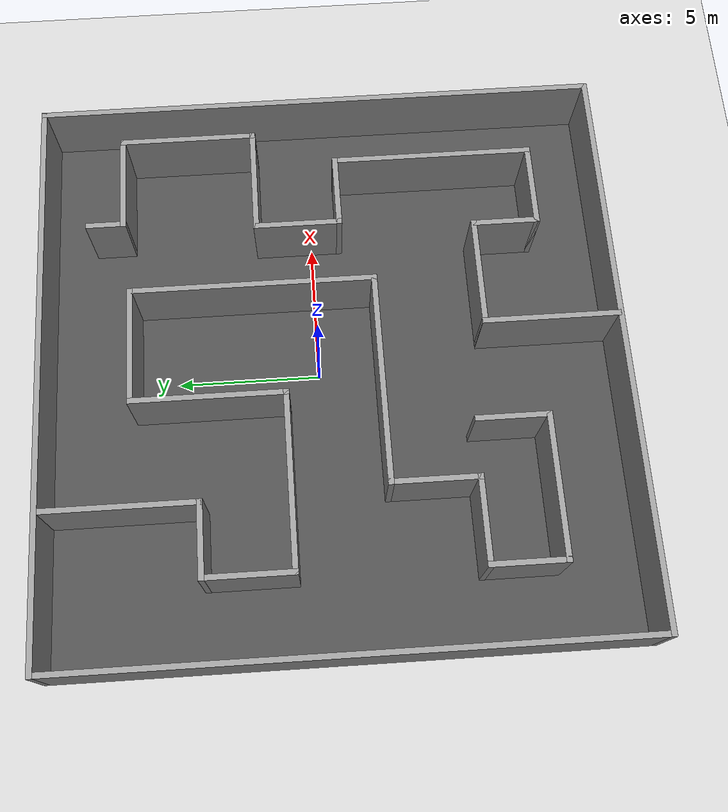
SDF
<sdf version="1.4">
 <world name="default">
  <light name="sun" type="directional">
   <pose>0 0 10 0 -0 0</pose>
   <diffuse>0.8 0.8 0.8 1</diffuse>
   <specular>0.2 0.2 0.2 1</specular>
   <attenuation>
    <range>1000</range>
    <constant>0.9</constant>
    <linear>0.01</linear>
    <quadratic>0.001</quadratic>
   </attenuation>
   <direction>-0.5 0.1 -0.9</direction>
  </light>
  <model name="ground_plane">
   <static>1</static>
   <link name="link">
    <collision name="collision">
     <geometry><plane><normal>0 0 1</normal><size>100 100</size></plane></geometry>
     <surface><friction><ode><mu>100</mu><mu2>50</mu2></ode></friction></surface>
    </collision>
    <visual name="visual">
     <cast_shadows>0</cast_shadows>
     <geometry><plane><normal>0 0 1</normal><size>100 100</size></plane></geometry>
     <material>
      <script><uri>file://media/materials/scripts/gazebo.material</uri><name>Gazebo/Grey</name></script>
     </material>
    </visual>
    <velocity_decay><linear>0</linear><angular>0</angular></velocity_decay>
   </link>
  </model>
  <physics type="ode">
   <max_step_size>0.001</max_step_size>
   <real_time_factor>1</real_time_factor>
   <real_time_update_rate>1000</real_time_update_rate>
   <gravity>0 0 -9.8</gravity>
  </physics>
  <scene><ambient>0.4 0.4 0.4 1</ambient><background>0.7 0.7 0.7 1</background><shadows>1</shadows></scene>
  <spherical_coordinates>
   <surface_model>EARTH_WGS84</surface_model>
   <latitude_deg>0</latitude_deg>
   <longitude_deg>0</longitude_deg>
   <elevation>0</elevation>
   <heading_deg>0</heading_deg>
  </spherical_coordinates>
  <model name="asphalt_plane">
   <static>1</static>
   <link name="link">
    <collision name="collision"><geometry><box><size>20 20 0.1</size></box></geometry></collision>
    <visual name="visual">
     <cast_shadows>0</cast_shadows>
     <geometry><box><size>20 20 0.1</size></box></geometry>
     <material>
      <script>
       <uri>model://asphalt_plane/materials/scripts</uri>
       <uri>model://asphalt_plane/materials/textures</uri>
       <name>vrc/asphalt</name>
      </script>
     </material>
    </visual>
    <velocity_decay><linear>0</linear><angular>0</angular></velocity_decay>
   </link>
   <pose>0 -0.413791 0 0 -0 0</pose>
  </model>
  <model name="house2d_1">
   <link name="Wall_10">
    <collision name="Wall_10_Collision">
     <geometry><box><size>6.24578 0.2 2.5</size></box></geometry>
     <pose>0 0 1.25 0 -0 0</pose>
    </collision>
    <visual name="Wall_10_Visual">
     <pose>0 0 1.25 0 -0 0</pose>
     <geometry><box><size>6.24578 0.2 2.5</size></box></geometry>
     <material>
      <script><uri>file://media/materials/scripts/gazebo.material</uri><name>Gazebo/Grey</name></script>
     </material>
    </visual>
    <velocity_decay><linear>0</linear><angular>0</angular></velocity_decay>
    <pose>-4.31155 1.65277 0 0 -0 0</pose>
   </link>
   <link name="Wall_11">
    <collision name="Wall_11_Collision">
     <geometry><box><size>5.44325 0.2 2.5</size></box></geometry>
     <pose>0 0 1.25 0 -0 0</pose>
    </collision>
    <visual name="Wall_11_Visual">
     <pose>0 0 1.25 0 -0 0</pose>
     <geometry><box><size>5.44325 0.2 2.5</size></box></geometry>
     <material>
      <script><uri>file://media/materials/scripts/gazebo.material</uri><name>Gazebo/Grey</name></script>
     </material>
    </visual>
    <velocity_decay><linear>0</linear><angular>0</angular></velocity_decay>
    <pose>-1.28866 4.27439 0 0 -0 1.5708</pose>
   </link>
   <link name="Wall_12">
    <collision name="Wall_12_Collision">
     <geometry><box><size>4.21269 0.2 2.5</size></box></geometry>
     <pose>0 0 1.25 0 -0 0</pose>
    </collision>
    <visual name="Wall_12_Visual">
     <pose>0 0 1.25 0 -0 0</pose>
     <geometry><box><size>4.21269 0.2 2.5</size></box></geometry>
     <material>
      <script><uri>file://media/materials/scripts/gazebo.material</uri><name>Gazebo/Grey</name></script>
     </material>
    </visual>
    <velocity_decay><linear>0</linear><angular>0</angular></velocity_decay>
    <pose>0.717687 6.89602 0 0 -0 0</pose>
   </link>
   <link name="Wall_13">
    <collision name="Wall_13_Collision">
     <geometry><box><size>8.7069 0.2 2.5</size></box></geometry>
     <pose>0 0 1.25 0 -0 0</pose>
    </collision>
    <visual name="Wall_13_Visual">
     <pose>0 0 1.25 0 -0 0</pose>
     <geometry><box><size>8.7069 0.2 2.5</size></box></geometry>
     <material>
      <script><uri>file://media/materials/scripts/gazebo.material</uri><name>Gazebo/Grey</name></script>
     </material>
    </visual>
    <velocity_decay><linear>0</linear><angular>0</angular></velocity_decay>
    <pose>2.72403 2.64257 0 0 0 -1.5708</pose>
   </link>
   <link name="Wall_14">
    <collision name="Wall_14_Collision">
     <geometry><box><size>7.52984 0.2 2.5</size></box></geometry>
     <pose>0 0 1.25 0 -0 0</pose>
    </collision>
    <visual name="Wall_14_Visual">
     <pose>0 0 1.25 0 -0 0</pose>
     <geometry><box><size>7.52984 0.2 2.5</size></box></geometry>
     <material>
      <script><uri>file://media/materials/scripts/gazebo.material</uri><name>Gazebo/Grey</name></script>
     </material>
    </visual>
    <velocity_decay><linear>0</linear><angular>0</angular></velocity_decay>
    <pose>-0.940891 -1.61088 0 0 -0 3.14159</pose>
   </link>
   <link name="Wall_15">
    <collision name="Wall_15_Collision">
     <geometry><box><size>3.14264 0.2 2.5</size></box></geometry>
     <pose>0 0 1.25 0 -0 0</pose>
    </collision>
    <visual name="Wall_15_Visual">
     <pose>0 0 1.25 0 -0 0</pose>
     <geometry><box><size>3.14264 0.2 2.5</size></box></geometry>
     <material>
      <script><uri>file://media/materials/scripts/gazebo.material</uri><name>Gazebo/Grey</name></script>
     </material>
    </visual>
    <velocity_decay><linear>0</linear><angular>0</angular></velocity_decay>
    <pose>-4.60581 -3.0822 0 0 0 -1.5708</pose>
   </link>
   <link name="Wall_16">
    <collision name="Wall_16_Collision">
     <geometry><box><size>3.08914 0.2 2.5</size></box></geometry>
     <pose>0 0 1.25 0 -0 0</pose>
    </collision>
    <visual name="Wall_16_Visual">
     <pose>0 0 1.25 0 -0 0</pose>
     <geometry><box><size>3.08914 0.2 2.5</size></box></geometry>
     <material>
      <script><uri>file://media/materials/scripts/gazebo.material</uri><name>Gazebo/Grey</name></script>
     </material>
    </visual>
    <velocity_decay><linear>0</linear><angular>0</angular></velocity_decay>
    <pose>-6.05038 -4.55352 0 0 -0 3.14159</pose>
   </link>
   <link name="Wall_17">
    <collision name="Wall_17_Collision">
     <geometry><box><size>2.71462 0.2 2.5</size></box></geometry>
     <pose>0 0 1.25 0 -0 0</pose>
    </collision>
    <visual name="Wall_17_Visual">
     <pose>0 0 1.25 0 -0 0</pose>
     <geometry><box><size>2.71462 0.2 2.5</size></box></geometry>
     <material>
      <script><uri>file://media/materials/scripts/gazebo.material</uri><name>Gazebo/Grey</name></script>
     </material>
    </visual>
    <velocity_decay><linear>0</linear><angular>0</angular></velocity_decay>
    <pose>-7.49495 -5.81083 0 0 0 -1.5708</pose>
   </link>
   <link name="Wall_18">
    <collision name="Wall_18_Collision">
     <geometry><box><size>5.06873 0.2 2.5</size></box></geometry>
     <pose>0 0 1.25 0 -0 0</pose>
    </collision>
    <visual name="Wall_18_Visual">
     <pose>0 0 1.25 0 -0 0</pose>
     <geometry><box><size>5.06873 0.2 2.5</size></box></geometry>
     <material>
      <script><uri>file://media/materials/scripts/gazebo.material</uri><name>Gazebo/Grey</name></script>
     </material>
    </visual>
    <velocity_decay><linear>0</linear><angular>0</angular></velocity_decay>
    <pose>-5.06058 -7.06814 0 0 -0 0</pose>
   </link>
   <link name="Wall_19">
    <collision name="Wall_19_Collision">
     <geometry><box><size>2.60761 0.2 2.5</size></box></geometry>
     <pose>0 0 1.25 0 -0 0</pose>
    </collision>
    <visual name="Wall_19_Visual">
     <pose>0 0 1.25 0 -0 0</pose>
     <geometry><box><size>2.60761 0.2 2.5</size></box></geometry>
     <material>
      <script><uri>file://media/materials/scripts/gazebo.material</uri><name>Gazebo/Grey</name></script>
     </material>
    </visual>
    <velocity_decay><linear>0</linear><angular>0</angular></velocity_decay>
    <pose>-2.62622 -5.86433 0 0 -0 1.5708</pose>
   </link>
   <link name="Wall_2">
    <collision name="Wall_2_Collision">
     <geometry><box><size>20.2 0.2 2.5</size></box></geometry>
     <pose>0 0 1.25 0 -0 0</pose>
    </collision>
    <visual name="Wall_2_Visual">
     <pose>0 0 1.25 0 -0 0</pose>
     <geometry><box><size>20.2 0.2 2.5</size></box></geometry>
     <material>
      <script><uri>file://media/materials/scripts/gazebo.material</uri><name>Gazebo/Grey</name></script>
     </material>
    </visual>
    <velocity_decay><linear>0</linear><angular>0</angular></velocity_decay>
    <pose>-0 -10 0 0 -0 0</pose>
   </link>
   <link name="Wall_21">
    <collision name="Wall_21_Collision">
     <geometry><box><size>4.80122 0.2 2.5</size></box></geometry>
     <pose>0 0 1.25 0 -0 0</pose>
    </collision>
    <visual name="Wall_21_Visual">
     <pose>0 0 1.25 0 -0 0</pose>
     <geometry><box><size>4.80122 0.2 2.5</size></box></geometry>
     <material>
      <script><uri>file://media/materials/scripts/gazebo.material</uri><name>Gazebo/Grey</name></script>
     </material>
    </visual>
    <velocity_decay><linear>0</linear><angular>0</angular></velocity_decay>
    <pose>0.851443 -7.60316 0 0 -0 1.5708</pose>
   </link>
   <link name="Wall_22">
    <collision name="Wall_22_Collision">
     <geometry><box><size>3.94517 0.2 2.5</size></box></geometry>
     <pose>0 0 1.25 0 -0 0</pose>
    </collision>
    <visual name="Wall_22_Visual">
     <pose>0 0 1.25 0 -0 0</pose>
     <geometry><box><size>3.94517 0.2 2.5</size></box></geometry>
     <material>
      <script><uri>file://media/materials/scripts/gazebo.material</uri><name>Gazebo/Grey</name></script>
     </material>
    </visual>
    <velocity_decay><linear>0</linear><angular>0</angular></velocity_decay>
    <pose>2.72403 -5.30255 0 0 -0 0</pose>
   </link>
   <link name="Wall_23">
    <collision name="Wall_23_Collision">
     <geometry><box><size>2.44711 0.2 2.5</size></box></geometry>
     <pose>0 0 1.25 0 -0 0</pose>
    </collision>
    <visual name="Wall_23_Visual">
     <pose>0 0 1.25 0 -0 0</pose>
     <geometry><box><size>2.44711 0.2 2.5</size></box></geometry>
     <material>
      <script><uri>file://media/materials/scripts/gazebo.material</uri><name>Gazebo/Grey</name></script>
     </material>
    </visual>
    <velocity_decay><linear>0</linear><angular>0</angular></velocity_decay>
    <pose>4.59662 -6.42611 0 0 0 -1.5708</pose>
   </link>
   <link name="Wall_24">
    <collision name="Wall_24_Collision">
     <geometry><box><size>3.03563 0.2 2.5</size></box></geometry>
     <pose>0 0 1.25 0 -0 0</pose>
    </collision>
    <visual name="Wall_24_Visual">
     <pose>0 0 1.25 0 -0 0</pose>
     <geometry><box><size>3.03563 0.2 2.5</size></box></geometry>
     <material>
      <script><uri>file://media/materials/scripts/gazebo.material</uri><name>Gazebo/Grey</name></script>
     </material>
    </visual>
    <velocity_decay><linear>0</linear><angular>0</angular></velocity_decay>
    <pose>6.01443 -7.54966 0 0 -0 0</pose>
   </link>
   <link name="Wall_25">
    <collision name="Wall_25_Collision">
     <geometry><box><size>7.20883 0.2 2.5</size></box></geometry>
     <pose>0 0 1.25 0 -0 0</pose>
    </collision>
    <visual name="Wall_25_Visual">
     <pose>0 0 1.25 0 -0 0</pose>
     <geometry><box><size>7.20883 0.2 2.5</size></box></geometry>
     <material>
      <script><uri>file://media/materials/scripts/gazebo.material</uri><name>Gazebo/Grey</name></script>
     </material>
    </visual>
    <velocity_decay><linear>0</linear><angular>0</angular></velocity_decay>
    <pose>7.43225 -4.04525 0 0 -0 1.5708</pose>
   </link>
   <link name="Wall_26">
    <collision name="Wall_26_Collision">
     <geometry><box><size>2.66112 0.2 2.5</size></box></geometry>
     <pose>0 0 1.25 0 -0 0</pose>
    </collision>
    <visual name="Wall_26_Visual">
     <pose>0 0 1.25 0 -0 0</pose>
     <geometry><box><size>2.66112 0.2 2.5</size></box></geometry>
     <material>
      <script><uri>file://media/materials/scripts/gazebo.material</uri><name>Gazebo/Grey</name></script>
     </material>
    </visual>
    <velocity_decay><linear>0</linear><angular>0</angular></velocity_decay>
    <pose>6.20169 -0.540832 0 0 -0 3.14159</pose>
   </link>
   <link name="Wall_27">
    <collision name="Wall_27_Collision">
     <geometry><box><size>3.14264 0.2 2.5</size></box></geometry>
     <pose>0 0 1.25 0 -0 0</pose>
    </collision>
    <visual name="Wall_27_Visual">
     <pose>0 0 1.25 0 -0 0</pose>
     <geometry><box><size>3.14264 0.2 2.5</size></box></geometry>
     <material>
      <script><uri>file://media/materials/scripts/gazebo.material</uri><name>Gazebo/Grey</name></script>
     </material>
    </visual>
    <velocity_decay><linear>0</linear><angular>0</angular></velocity_decay>
    <pose>4.97114 0.930487 0 0 -0 1.5708</pose>
   </link>
   <link name="Wall_28">
    <collision name="Wall_28_Collision">
     <geometry><box><size>3.89167 0.2 2.5</size></box></geometry>
     <pose>0 0 1.25 0 -0 0</pose>
    </collision>
    <visual name="Wall_28_Visual">
     <pose>0 0 1.25 0 -0 0</pose>
     <geometry><box><size>3.89167 0.2 2.5</size></box></geometry>
     <material>
      <script><uri>file://media/materials/scripts/gazebo.material</uri><name>Gazebo/Grey</name></script>
     </material>
    </visual>
    <velocity_decay><linear>0</linear><angular>0</angular></velocity_decay>
    <pose>6.81697 2.40181 0 0 -0 0</pose>
   </link>
   <link name="Wall_29">
    <collision name="Wall_29_Collision">
     <geometry><box><size>4.90822 0.2 2.5</size></box></geometry>
     <pose>0 0 1.25 0 -0 0</pose>
    </collision>
    <visual name="Wall_29_Visual">
     <pose>0 0 1.25 0 -0 0</pose>
     <geometry><box><size>4.90822 0.2 2.5</size></box></geometry>
     <material>
      <script><uri>file://media/materials/scripts/gazebo.material</uri><name>Gazebo/Grey</name></script>
     </material>
    </visual>
    <velocity_decay><linear>0</linear><angular>0</angular></velocity_decay>
    <pose>8.66281 4.75592 0 0 -0 1.5708</pose>
   </link>
   <link name="Wall_3">
    <collision name="Wall_3_Collision">
     <geometry><box><size>20.2 0.2 2.5</size></box></geometry>
     <pose>0 0 1.25 0 -0 0</pose>
    </collision>
    <visual name="Wall_3_Visual">
     <pose>0 0 1.25 0 -0 0</pose>
     <geometry><box><size>20.2 0.2 2.5</size></box></geometry>
     <material>
      <script><uri>file://media/materials/scripts/gazebo.material</uri><name>Gazebo/Grey</name></script>
     </material>
    </visual>
    <velocity_decay><linear>0</linear><angular>0</angular></velocity_decay>
    <pose>10 0 0 0 -0 1.5708</pose>
   </link>
   <link name="Wall_30">
    <collision name="Wall_30_Collision">
     <geometry><box><size>3.51715 0.2 2.5</size></box></geometry>
     <pose>0 0 1.25 0 -0 0</pose>
    </collision>
    <visual name="Wall_30_Visual">
     <pose>0 0 1.25 0 -0 0</pose>
     <geometry><box><size>3.51715 0.2 2.5</size></box></geometry>
     <material>
      <script><uri>file://media/materials/scripts/gazebo.material</uri><name>Gazebo/Grey</name></script>
     </material>
    </visual>
    <velocity_decay><linear>0</linear><angular>0</angular></velocity_decay>
    <pose>7.00423 7.11003 0 0 -0 3.14159</pose>
   </link>
   <link name="Wall_31">
    <collision name="Wall_31_Collision">
     <geometry><box><size>1.43056 0.2 2.5</size></box></geometry>
     <pose>0 0 1.25 0 -0 0</pose>
    </collision>
    <visual name="Wall_31_Visual">
     <pose>0 0 1.25 0 -0 0</pose>
     <geometry><box><size>1.43056 0.2 2.5</size></box></geometry>
     <material>
      <script><uri>file://media/materials/scripts/gazebo.material</uri><name>Gazebo/Grey</name></script>
     </material>
    </visual>
    <velocity_decay><linear>0</linear><angular>0</angular></velocity_decay>
    <pose>5.34565 7.7253 0 0 -0 1.5708</pose>
   </link>
   <link name="Wall_4">
    <collision name="Wall_4_Collision">
     <geometry><box><size>20.2 0.2 2.5</size></box></geometry>
     <pose>0 0 1.25 0 -0 0</pose>
    </collision>
    <visual name="Wall_4_Visual">
     <pose>0 0 1.25 0 -0 0</pose>
     <geometry><box><size>20.2 0.2 2.5</size></box></geometry>
     <material>
      <script><uri>file://media/materials/scripts/gazebo.material</uri><name>Gazebo/Grey</name></script>
     </material>
    </visual>
    <velocity_decay><linear>0</linear><angular>0</angular></velocity_decay>
    <pose>-0 10 0 0 -0 3.14159</pose>
   </link>
   <link name="Wall_5">
    <collision name="Wall_5_Collision">
     <geometry><box><size>20 0.2 2.5</size></box></geometry>
     <pose>0 0 1.25 0 -0 0</pose>
    </collision>
    <visual name="Wall_5_Visual">
     <pose>0 0 1.25 0 -0 0</pose>
     <geometry><box><size>20 0.2 2.5</size></box></geometry>
     <material>
      <script><uri>file://media/materials/scripts/gazebo.material</uri><name>Gazebo/Grey</name></script>
     </material>
    </visual>
    <velocity_decay><linear>0</linear><angular>0</angular></velocity_decay>
    <pose>-10 0.1 0 0 0 -1.5708</pose>
   </link>
   <link name="Wall_7">
    <collision name="Wall_7_Collision">
     <geometry><box><size>5.55025 0.2 2.5</size></box></geometry>
     <pose>0 0 1.25 0 -0 0</pose>
    </collision>
    <visual name="Wall_7_Visual">
     <pose>0 0 1.25 0 -0 0</pose>
     <geometry><box><size>5.55025 0.2 2.5</size></box></geometry>
     <material>
      <script><uri>file://media/materials/scripts/gazebo.material</uri><name>Gazebo/Grey</name></script>
     </material>
    </visual>
    <velocity_decay><linear>0</linear><angular>0</angular></velocity_decay>
    <pose>-4.87332 7.32404 0 0 0 -1.5708</pose>
   </link>
   <link name="Wall_8">
    <collision name="Wall_8_Collision">
     <geometry><box><size>2.66112 0.2 2.5</size></box></geometry>
     <pose>0 0 1.25 0 -0 0</pose>
    </collision>
    <visual name="Wall_8_Visual">
     <pose>0 0 1.25 0 -0 0</pose>
     <geometry><box><size>2.66112 0.2 2.5</size></box></geometry>
     <material>
      <script><uri>file://media/materials/scripts/gazebo.material</uri><name>Gazebo/Grey</name></script>
     </material>
    </visual>
    <velocity_decay><linear>0</linear><angular>0</angular></velocity_decay>
    <pose>-6.10388 4.64891 0 0 -0 3.14159</pose>
   </link>
   <link name="Wall_9">
    <collision name="Wall_9_Collision">
     <geometry><box><size>3.19614 0.2 2.5</size></box></geometry>
     <pose>0 0 1.25 0 -0 0</pose>
    </collision>
    <visual name="Wall_9_Visual">
     <pose>0 0 1.25 0 -0 0</pose>
     <geometry><box><size>3.19614 0.2 2.5</size></box></geometry>
     <material>
      <script><uri>file://media/materials/scripts/gazebo.material</uri><name>Gazebo/Grey</name></script>
     </material>
    </visual>
    <velocity_decay><linear>0</linear><angular>0</angular></velocity_decay>
    <pose>-7.33444 3.15084 0 0 0 -1.5708</pose>
   </link>
   <static>1</static>
   <pose>0 -0.474598 0 0 -0 0</pose>
  </model>
 </world>
</sdf>
